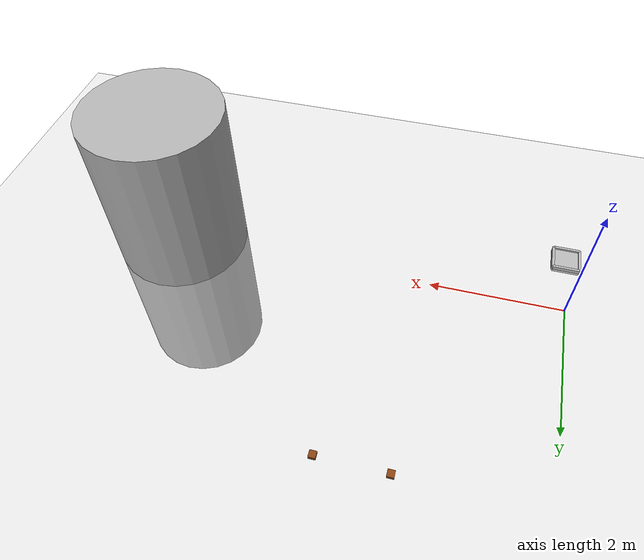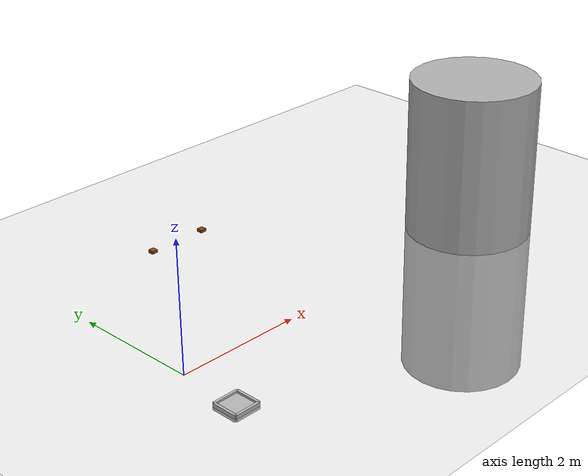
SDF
<sdf version="1.5">
 <world name="default">
  <plugin name="ros_link_attacher_plugin" filename="libgazebo_ros_link_attacher.so"/>
  <include><uri>model://sun</uri></include>
  <include><uri>model://ground_plane</uri></include>
  <include><uri>model://simple_bin</uri><pose>0 -1 0 0 0 0</pose></include>
  <include><uri>model://small_box</uri><pose>2 3 0 0 0 0</pose><name>small_box_1</name></include>
  <include><uri>model://small_box</uri><pose>3 3 0 0 0 0</pose><name>small_box_2</name></include>
  <model name="unit_cylinder">
   <pose>6 0 0 0 0 0</pose>
   <link name="link">
    <collision name="collision">
     <geometry><cylinder><radius>1.0</radius><length>5.0</length></cylinder></geometry>
    </collision>
    <visual name="visual">
     <geometry><cylinder><radius>1.0</radius><length>5.0</length></cylinder></geometry>
     <material>
      <ambient>0.5 0.5 0.5 1.0</ambient>
      <diffuse>0.7 0.7 0.7 1.0</diffuse>
      <specular>0.2 0.2 0.2 1.0</specular>
     </material>
    </visual>
   </link>
  </model>
  <plugin name="wind_plugin" filename="libgazebo_wind_plugin.so">
   <frameId>base_link</frameId>
   <xyzOffset>1 0 0</xyzOffset>
   <windDirectionMean>0 1 0</windDirectionMean>
   <windVelocityMean>0.0</windVelocityMean>
   <windGustDirection>0 1 0</windGustDirection>
   <windGustStart>30</windGustStart>
   <windGustDuration>5</windGustDuration>
   <windGustVelocityMean>15.0</windGustVelocityMean>
   <windPubTopic>world_wind</windPubTopic>
  </plugin>
  <physics name="default_physics" default="0" type="ode">
   <gravity>0 0 -9.8066</gravity>
   <ode>
    <solver>
     <type>quick</type>
     <iters>10</iters>
     <sor>1.3</sor>
     <use_dynamic_moi_rescaling>0</use_dynamic_moi_rescaling>
    </solver>
    <constraints>
     <cfm>0</cfm>
     <erp>0.2</erp>
     <contact_max_correcting_vel>100</contact_max_correcting_vel>
     <contact_surface_layer>0.001</contact_surface_layer>
    </constraints>
   </ode>
   <max_step_size>0.004</max_step_size>
   <real_time_factor>1</real_time_factor>
   <real_time_update_rate>250</real_time_update_rate>
   <magnetic_field>6.0e-6 2.3e-5 -4.2e-5</magnetic_field>
  </physics>
 </world>
</sdf>

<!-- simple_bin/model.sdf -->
<sdf version="1.6">
  <model name="simple_bin">
    <!-- Static bin since it will not move -->
    <static>true</static>

    <!-- Bin bottom -->
    <link name="bin_bottom">
      <pose>0 0 0.01 0 0 0</pose> <!-- Slightly raised to avoid collision with the ground -->
      <collision name="collision_bottom">
        <geometry>
          <box>
            <size>0.4 0.4 0.02</size> <!-- 0.4m x 0.4m x 0.02m bottom -->
          </box>
        </geometry>
      </collision>
      <visual name="visual_bottom">
        <geometry>
          <box>
            <size>0.4 0.4 0.02</size>
          </box>
        </geometry>
      </visual>
    </link>

    <!-- Bin front wall -->
    <link name="bin_front">
      <pose>0 0.2 0 0 0 0</pose> <!-- Positioned forward, adjusted for no gap -->
      <collision name="collision_front">
        <geometry>
          <box>
            <size>0.4 0.04 0.1</size> <!-- 0.4m x 0.04m x 0.1m front wall -->
          </box>
        </geometry>
      </collision>
      <visual name="visual_front">
        <geometry>
          <box>
            <size>0.4 0.04 0.1</size>
          </box>
        </geometry>
      </visual>
    </link>

    <!-- Bin back wall -->
    <link name="bin_back">
      <pose>0 -0.2 0 0 0 0</pose> <!-- Positioned backward, adjusted for no gap -->
      <collision name="collision_back">
        <geometry>
          <box>
            <size>0.4 0.04 0.1</size> <!-- 0.4m x 0.04m x 0.1m back wall -->
          </box>
        </geometry>
      </collision>
      <visual name="visual_back">
        <geometry>
          <box>
            <size>0.4 0.04 0.1</size>
          </box>
        </geometry>
      </visual>
    </link>

    <!-- Bin left wall -->
    <link name="bin_left">
      <pose>-0.2 0 0 0 0 0</pose> <!-- Positioned left, adjusted for no gap -->
      <collision name="collision_left">
        <geometry>
          <box>
            <size>0.04 0.4 0.1</size> <!-- 0.04m x 0.4m x 0.1m left wall -->
          </box>
        </geometry>
      </collision>
      <visual name="visual_left">
        <geometry>
          <box>
            <size>0.04 0.4 0.1</size>
          </box>
        </geometry>
      </visual>
    </link>

    <!-- Bin right wall -->
    <link name="bin_right">
      <pose>0.2 0 0 0 0 0</pose> <!-- Positioned right, adjusted for no gap -->
      <collision name="collision_right">
        <geometry>
          <box>
            <size>0.04 0.4 0.1</size> <!-- 0.04m x 0.4m x 0.1m right wall -->
          </box>
        </geometry>
      </collision>
      <visual name="visual_right">
        <geometry>
          <box>
            <size>0.04 0.4 0.1</size>
          </box>
        </geometry>
      </visual>
    </link>

  </model>
</sdf>

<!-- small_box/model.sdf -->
<sdf version="1.6">
  <!-- Define small box -->
  <model name="small_box">
    <link name="box_link">
      <visual name="visual">
        <geometry>
          <box>
            <size>0.1 0.1 0.05</size> <!-- Width, Depth, Height -->
          </box>
        </geometry>
        <material>
    	  <ambient>0.545 0.271 0.075 1.0</ambient> <!-- Brown color -->
    	  <diffuse>0.545 0.271 0.075 1.0</diffuse> <!-- Brown color -->
    	  <specular>0.2 0.1 0.05 1.0</specular>    <!-- Slightly lighter specular component -->
    	  <emissive>0.0 0.0 0.0 1.0</emissive>     <!-- No emissive light -->
	</material>
      </visual>
      <collision name="collision">
        <geometry>
          <box>
            <size>0.1 0.1 0.05</size>
          </box>
        </geometry>
      </collision>
      <inertial>
        <mass>0.05</mass> <!-- Adjust mass as needed -->
        <inertia>
          <ixx>0.001</ixx>
          <ixy>0</ixy>
          <ixz>0</ixz>
          <iyy>0.001</iyy>
          <iyz>0</iyz>
          <izz>0.001</izz>
        </inertia>
      </inertial>
    </link>
  </model>
</sdf>
